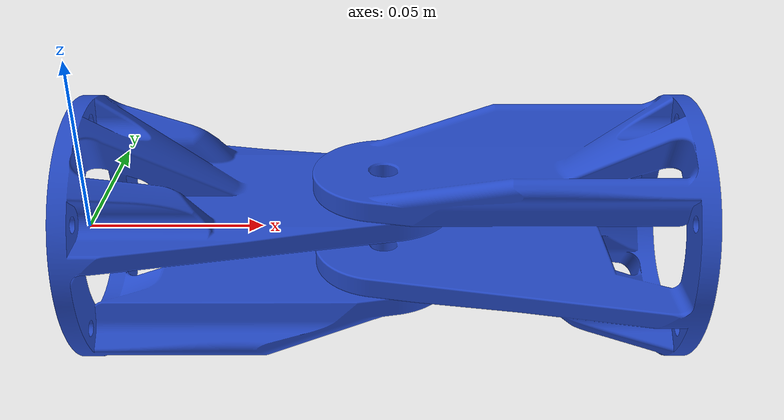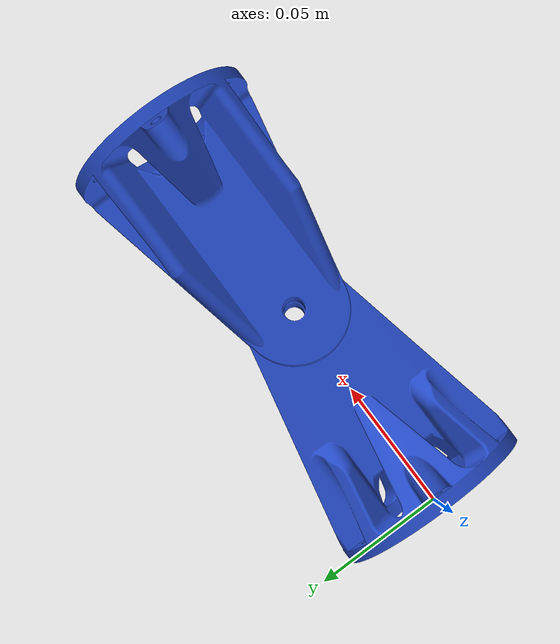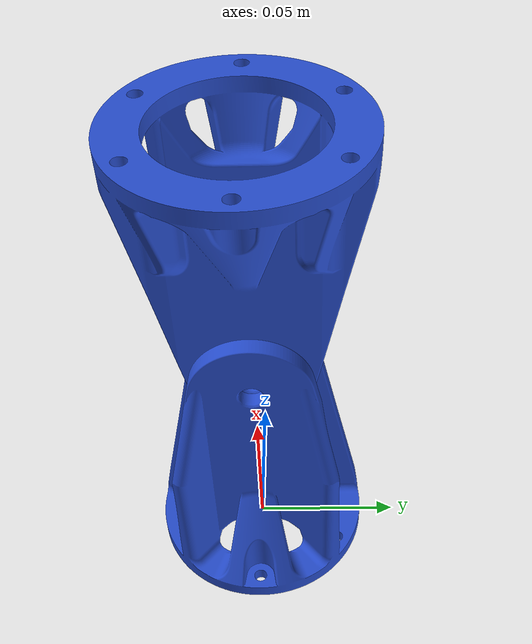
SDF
<?xml version="1.0"?>
<sdf version="1.6">
    <model name="uuv_hippocampus_universal_joint">
        <link name="base_link">
            <pose>0 0 0 0 0 0</pose>
            <visual name="aux_link_visual">
                <pose>0.005 0 0 1.5707963268 -1.5707963268 0</pose>
                <geometry>
                    <mesh>
                        <scale>1e-3 1e-3 1e-3</scale>
                        <uri>model://uuv_hippocampus_universal_joint/meshes/uuv_hippocampus_joint.stl</uri>
                    </mesh>
                </geometry>
                <material>
                    <script>
                        <name>Gazebo/Blue</name>
                        <uri>file://media/materials/scripts/gazebo.material</uri>
                    </script>
                </material>
            </visual>
            <gravity>0</gravity>
        </link>
        <link name="aux_link">
            <pose>0.17 0 0 0 0 3.1415926536</pose>
            <visual name="base_link_visual">
                <pose>0.005 0 0 -1.5707963268 1.5707963268 0</pose>
                <geometry>
                    <mesh>
                        <scale>1e-3 1e-3 1e-3</scale>
                        <uri>model://uuv_hippocampus_universal_joint/meshes/uuv_hippocampus_joint.stl</uri>
                    </mesh>
                </geometry>
                <material>
                    <script>
                        <name>Gazebo/Blue</name>
                        <uri>file://media/materials/scripts/gazebo.material</uri>
                    </script>
                </material>
            </visual>
            <gravity>0</gravity>
        </link>
        <link name="opp_link">
            <pose>0.17 0 0 0 0 3.1415926536</pose>
            <gravity>0</gravity>
        </link>

        <joint name="joint_0" type="revolute">
            <parent>base_link</parent>
            <child>aux_link</child>
            <pose>0.085 0.0 0.0 0.0 0.0 0.0</pose>
            <axis>
                <xyz>0.0 0.0 1.0</xyz>
                <limit>
                    <lower>-2.17</lower>
                    <upper>2.17</upper>
                    <effort>1e3</effort>
                </limit>
                <dynamics>
                    <spring_reference>0</spring_reference>
                    <spring_stiffness>0</spring_stiffness>
                </dynamics>
                <use_parent_model_frame>1</use_parent_model_frame>
            </axis>
        </joint>
        <joint name="joint_1" type="revolute">
            <parent>aux_link</parent>
            <child>opp_link</child>
            <pose>0.0 0.0 0.0 0.0 0.0 0.0</pose>
            <axis>
                <xyz>1.0 0.0 0.0</xyz>
                <limit>
                    <lower>-1e+16</lower>
                    <upper>1e+16</upper>
                </limit>
                <dynamics>
                    <spring_reference>0</spring_reference>
                    <spring_stiffness>0</spring_stiffness>
                </dynamics>
                <use_parent_model_frame>1</use_parent_model_frame>
            </axis>
        </joint>
    </model>
</sdf>
